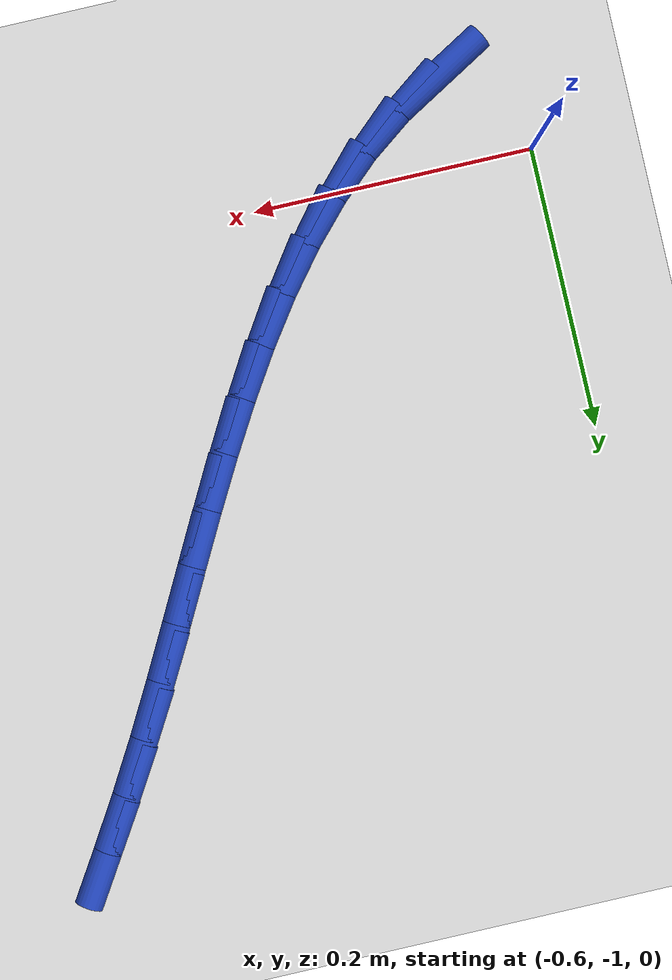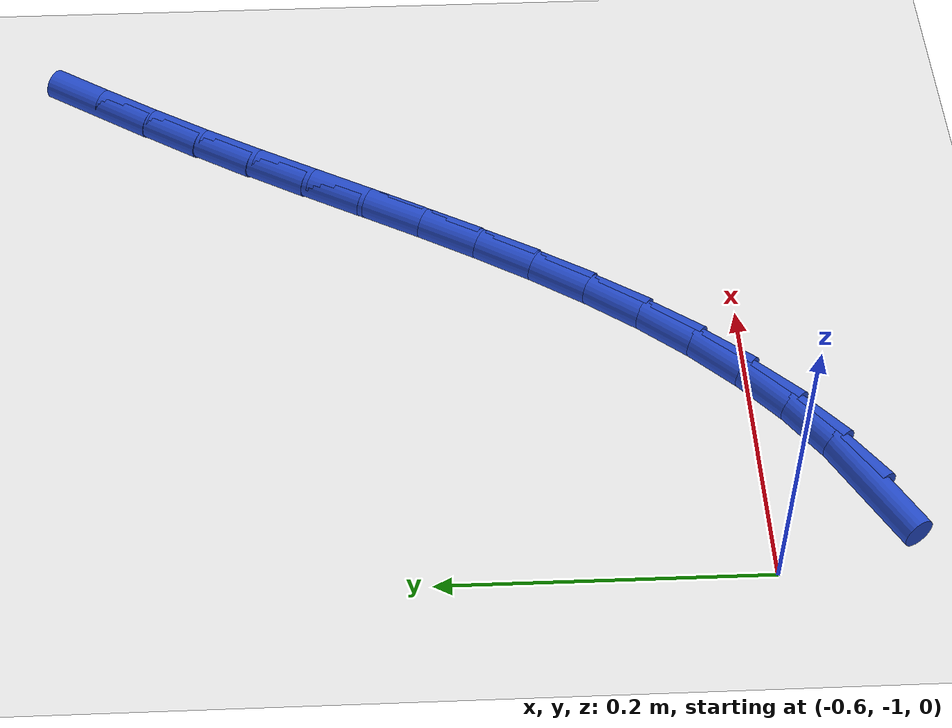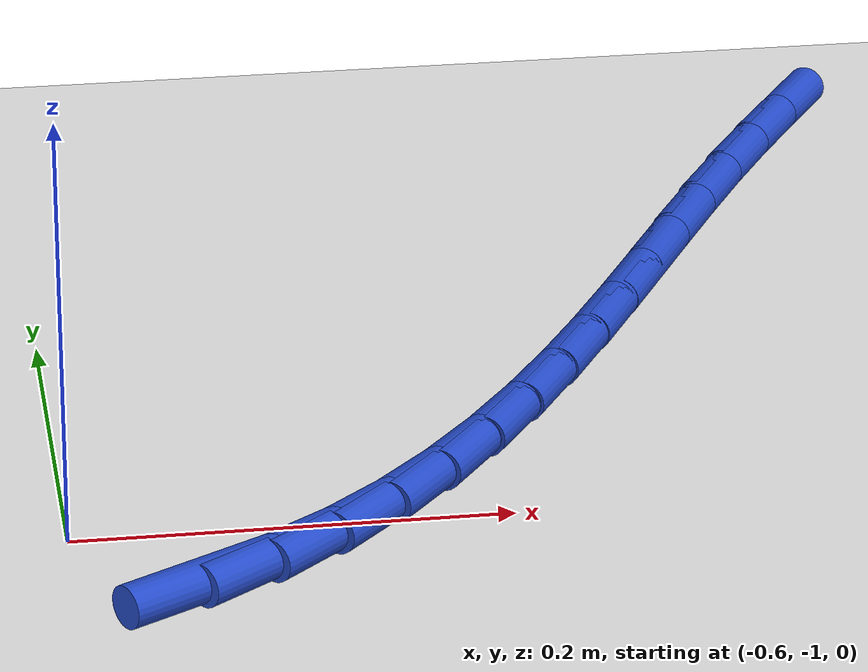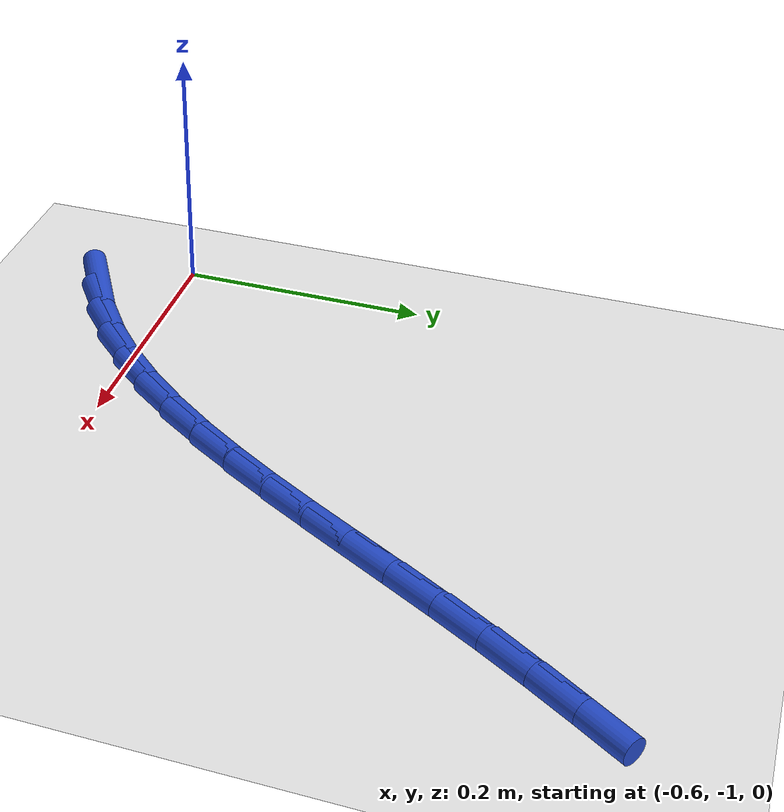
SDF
<sdf version="1.6">
 <world name="default">
  <model name="ground_plane">
   <static>1</static>
   <link name="link">
    <collision name="collision">
     <geometry><plane><normal>0 0 1</normal><size>100 100</size></plane></geometry>
     <surface><friction><ode><mu>100</mu><mu2>50</mu2></ode></friction></surface>
    </collision>
    <visual name="visual">
     <cast_shadows>0</cast_shadows>
     <geometry><plane><normal>0 0 1</normal><size>100 100</size></plane></geometry>
     <material>
      <script><uri>file://media/materials/scripts/gazebo.material</uri><name>Gazebo/WhiteGlow</name></script>
     </material>
    </visual>
   </link>
  </model>
  <model name="line">
   <link name="link_149">
    <pose>-0.5466162754804275 -1.0639577176206485 0.01 0 1.57 0.5230258886767751</pose>
    <collision name="collision">
     <geometry><cylinder><radius>0.01</radius><length>0.08</length></cylinder></geometry>
    </collision>
    <visual name="visual">
     <material>
      <script><name>Gazebo/Blue</name><uri>file://media/materials/scripts/gazebo.material</uri></script>
     </material>
     <geometry><cylinder><radius>0.01</radius><length>0.08</length></cylinder></geometry>
    </visual>
   </link>
   <link name="link_150">
    <pose>-0.5144267174908945 -1.0453976474920876 0.01 0 1.57 0.6350060113884461</pose>
    <collision name="collision">
     <geometry><cylinder><radius>0.01</radius><length>0.08</length></cylinder></geometry>
    </collision>
    <visual name="visual">
     <material>
      <script><name>Gazebo/Blue</name><uri>file://media/materials/scripts/gazebo.material</uri></script>
     </material>
     <geometry><cylinder><radius>0.01</radius><length>0.08</length></cylinder></geometry>
    </visual>
   </link>
   <link name="link_151">
    <pose>-0.48458575754712113 -1.0234105259184738 0.01 0 1.57 0.7354096431872784</pose>
    <collision name="collision">
     <geometry><cylinder><radius>0.01</radius><length>0.08</length></cylinder></geometry>
    </collision>
    <visual name="visual">
     <material>
      <script><name>Gazebo/Blue</name><uri>file://media/materials/scripts/gazebo.material</uri></script>
     </material>
     <geometry><cylinder><radius>0.01</radius><length>0.08</length></cylinder></geometry>
    </visual>
   </link>
   <link name="link_152">
    <pose>-0.4568670290384605 -0.9983331948228416 0.01 0 1.57 0.8219890969876142</pose>
    <collision name="collision">
     <geometry><cylinder><radius>0.01</radius><length>0.08</length></cylinder></geometry>
    </collision>
    <visual name="visual">
     <material>
      <script><name>Gazebo/Blue</name><uri>file://media/materials/scripts/gazebo.material</uri></script>
     </material>
     <geometry><cylinder><radius>0.01</radius><length>0.08</length></cylinder></geometry>
    </visual>
   </link>
   <link name="link_153">
    <pose>-0.43102292014754173 -0.9705250222254839 0.01 0 1.57 0.8945744714140691</pose>
    <collision name="collision">
     <geometry><cylinder><radius>0.01</radius><length>0.08</length></cylinder></geometry>
    </collision>
    <visual name="visual">
     <material>
      <script><name>Gazebo/Blue</name><uri>file://media/materials/scripts/gazebo.material</uri></script>
     </material>
     <geometry><cylinder><radius>0.01</radius><length>0.08</length></cylinder></geometry>
    </visual>
   </link>
   <link name="link_154">
    <pose>-0.40680581905699353 -0.9403453761466927 0.01 0 1.57 0.9537713441457866</pose>
    <collision name="collision">
     <geometry><cylinder><radius>0.01</radius><length>0.08</length></cylinder></geometry>
    </collision>
    <visual name="visual">
     <material>
      <script><name>Gazebo/Blue</name><uri>file://media/materials/scripts/gazebo.material</uri></script>
     </material>
     <geometry><cylinder><radius>0.01</radius><length>0.08</length></cylinder></geometry>
    </visual>
   </link>
   <link name="link_155">
    <pose>-0.3839681139494462 -0.908153624606762 0.01 0 1.57 1.0005310719383786</pose>
    <collision name="collision">
     <geometry><cylinder><radius>0.01</radius><length>0.08</length></cylinder></geometry>
    </collision>
    <visual name="visual">
     <material>
      <script><name>Gazebo/Blue</name><uri>file://media/materials/scripts/gazebo.material</uri></script>
     </material>
     <geometry><cylinder><radius>0.01</radius><length>0.08</length></cylinder></geometry>
    </visual>
   </link>
   <link name="link_156">
    <pose>-0.3622621930075282 -0.8743091356259842 0.01 0 1.57 1.0358557025163837</pose>
    <collision name="collision">
     <geometry><cylinder><radius>0.01</radius><length>0.08</length></cylinder></geometry>
    </collision>
    <visual name="visual">
     <material>
      <script><name>Gazebo/Blue</name><uri>file://media/materials/scripts/gazebo.material</uri></script>
     </material>
     <geometry><cylinder><radius>0.01</radius><length>0.08</length></cylinder></geometry>
    </visual>
   </link>
   <link name="link_157">
    <pose>-0.3414404444138689 -0.8391712772246518 0.01 0 1.57 1.0606257514966013</pose>
    <collision name="collision">
     <geometry><cylinder><radius>0.01</radius><length>0.08</length></cylinder></geometry>
    </collision>
    <visual name="visual">
     <material>
      <script><name>Gazebo/Blue</name><uri>file://media/materials/scripts/gazebo.material</uri></script>
     </material>
     <geometry><cylinder><radius>0.01</radius><length>0.08</length></cylinder></geometry>
    </visual>
   </link>
   <link name="link_158">
    <pose>-0.32125525635109725 -0.8030994174230577 0.01 0 1.57 1.075512375446786</pose>
    <collision name="collision">
     <geometry><cylinder><radius>0.01</radius><length>0.08</length></cylinder></geometry>
    </collision>
    <visual name="visual">
     <material>
      <script><name>Gazebo/Blue</name><uri>file://media/materials/scripts/gazebo.material</uri></script>
     </material>
     <geometry><cylinder><radius>0.01</radius><length>0.08</length></cylinder></geometry>
    </visual>
   </link>
   <link name="link_159">
    <pose>-0.3014590170018424 -0.7664529242414939 0.01 0 1.57 1.0809383175642395</pose>
    <collision name="collision">
     <geometry><cylinder><radius>0.01</radius><length>0.08</length></cylinder></geometry>
    </collision>
    <visual name="visual">
     <material>
      <script><name>Gazebo/Blue</name><uri>file://media/materials/scripts/gazebo.material</uri></script>
     </material>
     <geometry><cylinder><radius>0.01</radius><length>0.08</length></cylinder></geometry>
    </visual>
   </link>
   <link name="link_160">
    <pose>-0.2818041145487339 -0.7295911657002545 0.01 0 1.57 1.0770633289912583</pose>
    <collision name="collision">
     <geometry><cylinder><radius>0.01</radius><length>0.08</length></cylinder></geometry>
    </collision>
    <visual name="visual">
     <material>
      <script><name>Gazebo/Blue</name><uri>file://media/materials/scripts/gazebo.material</uri></script>
     </material>
     <geometry><cylinder><radius>0.01</radius><length>0.08</length></cylinder></geometry>
    </visual>
   </link>
   <link name="link_161">
    <pose>-0.2620429371744008 -0.6928735098196319 0.01 0 1.57 1.0637807033745021</pose>
    <collision name="collision">
     <geometry><cylinder><radius>0.01</radius><length>0.08</length></cylinder></geometry>
    </collision>
    <visual name="visual">
     <material>
      <script><name>Gazebo/Blue</name><uri>file://media/materials/scripts/gazebo.material</uri></script>
     </material>
     <geometry><cylinder><radius>0.01</radius><length>0.08</length></cylinder></geometry>
    </visual>
   </link>
   <link name="link_162">
    <pose>-0.2419278730614723 -0.6566593246199186 0.01 0 1.57 1.041445911068633</pose>
    <collision name="collision">
     <geometry><cylinder><radius>0.01</radius><length>0.08</length></cylinder></geometry>
    </collision>
    <visual name="visual">
     <material>
      <script><name>Gazebo/Blue</name><uri>file://media/materials/scripts/gazebo.material</uri></script>
     </material>
     <geometry><cylinder><radius>0.01</radius><length>0.08</length></cylinder></geometry>
    </visual>
   </link>
   <link name="link_163">
    <pose>-0.22123243616756408 -0.6212852159119463 0.01 0 1.57 1.0201001427493346</pose>
    <collision name="collision">
     <geometry><cylinder><radius>0.01</radius><length>0.08</length></cylinder></geometry>
    </collision>
    <visual name="visual">
     <material>
      <script><name>Gazebo/Blue</name><uri>file://media/materials/scripts/gazebo.material</uri></script>
     </material>
     <geometry><cylinder><radius>0.01</radius><length>0.08</length></cylinder></geometry>
    </visual>
   </link>
   <link name="link_164">
    <pose>-0.20003279772516971 -0.5867616879415171 0.01 0 1.57 1.0077565214035542</pose>
    <collision name="collision">
     <geometry><cylinder><radius>0.01</radius><length>0.08</length></cylinder></geometry>
    </collision>
    <visual name="visual">
     <material>
      <script><name>Gazebo/Blue</name><uri>file://media/materials/scripts/gazebo.material</uri></script>
     </material>
     <geometry><cylinder><radius>0.01</radius><length>0.08</length></cylinder></geometry>
    </visual>
   </link>
  </model>
 </world>
</sdf>
